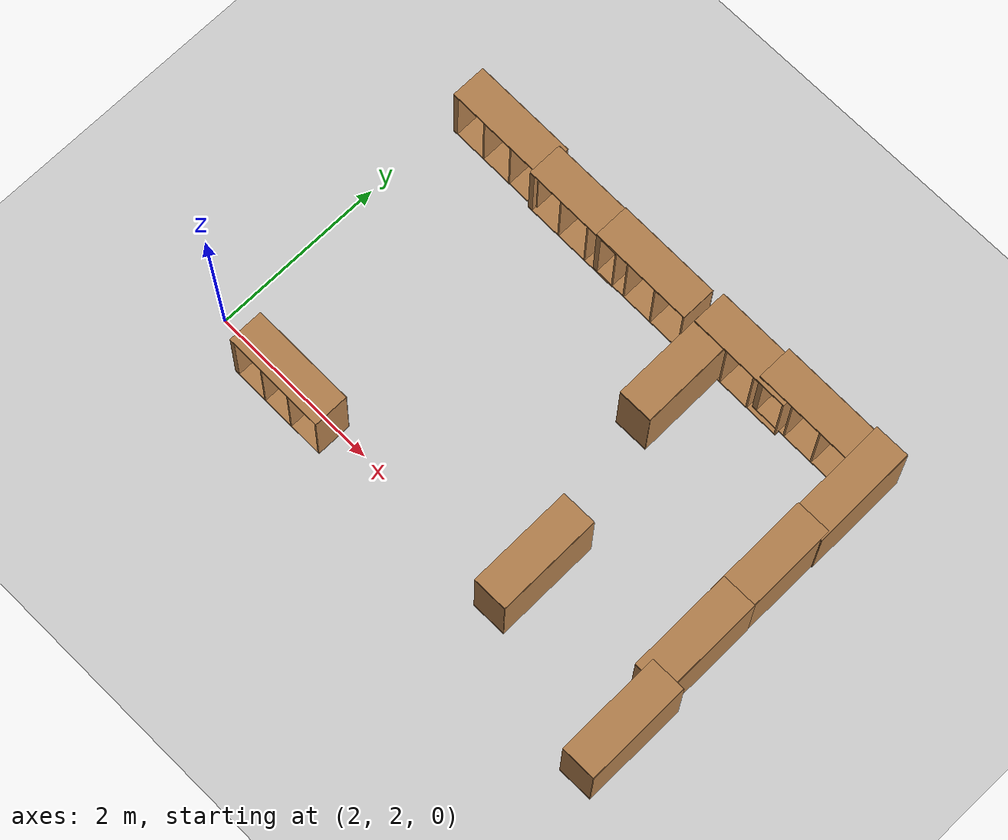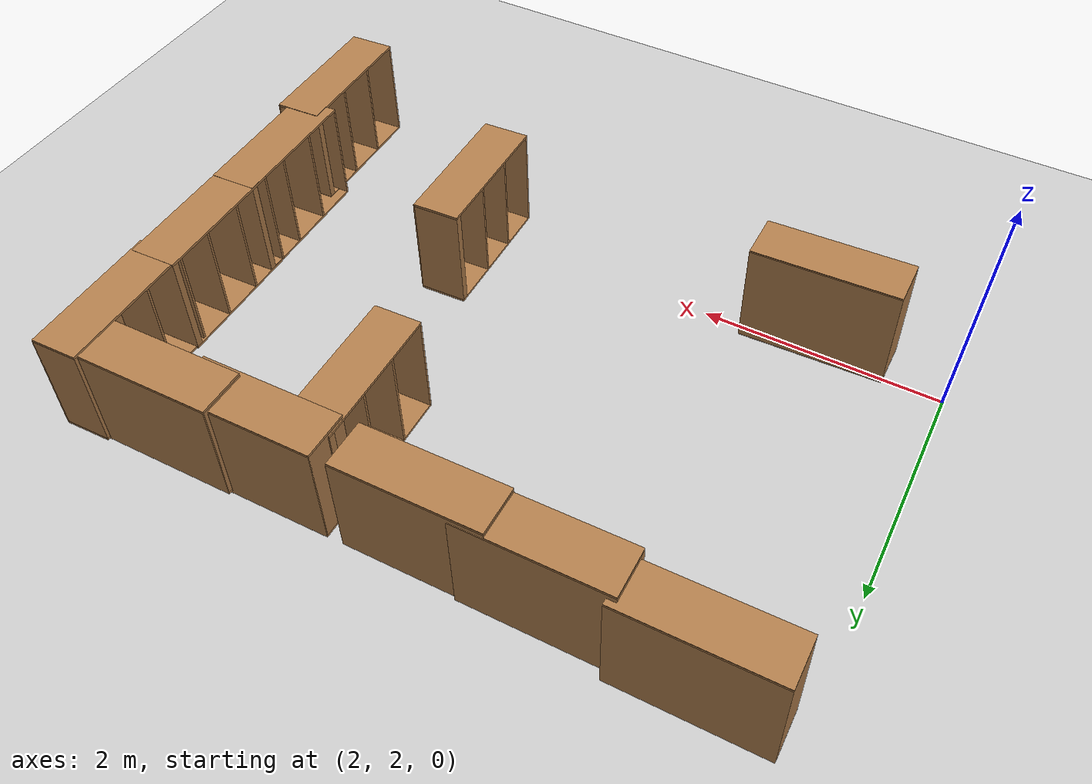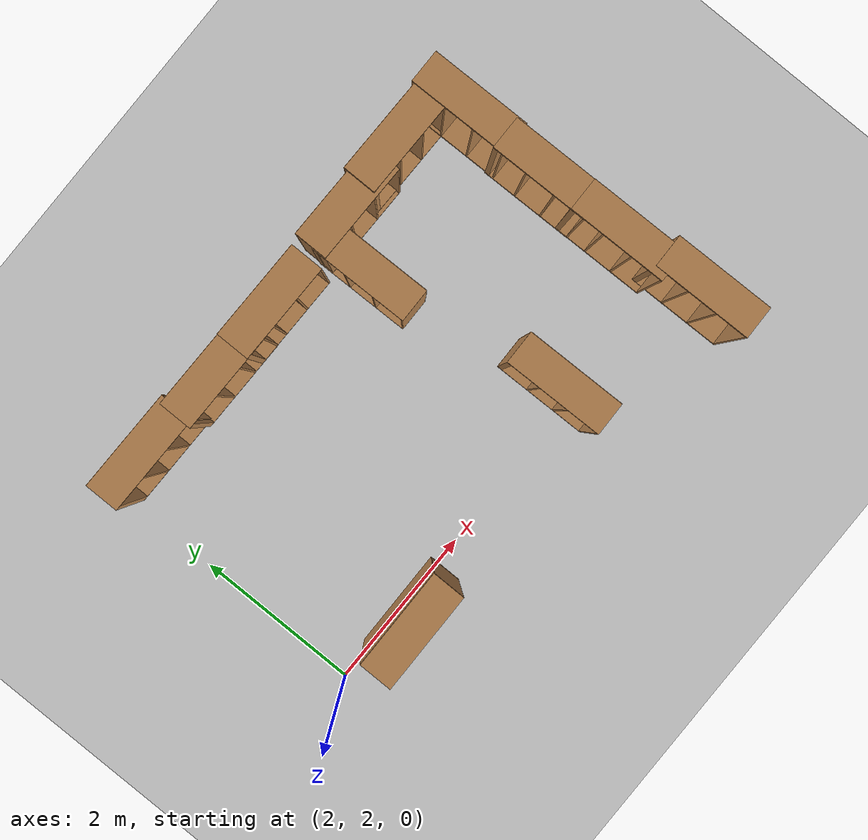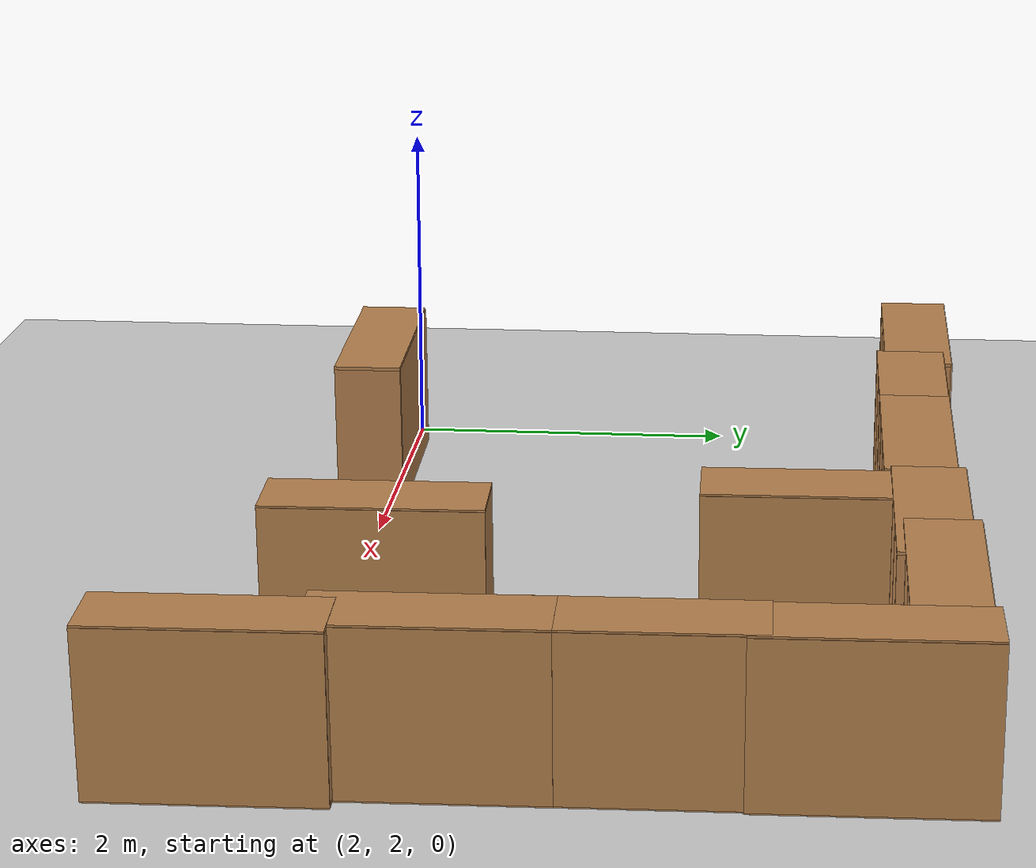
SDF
<sdf version="1.7">
 <world name="default">
  <model name="ground_plane">
   <static>1</static>
   <link name="link">
    <collision name="collision">
     <geometry><plane><normal>0 0 1</normal><size>100 100</size></plane></geometry>
     <surface>
      <contact><collide_bitmask>65535</collide_bitmask></contact>
      <friction><ode><mu>100</mu><mu2>50</mu2></ode></friction>
     </surface>
    </collision>
    <visual name="visual">
     <cast_shadows>0</cast_shadows>
     <geometry><plane><normal>0 0 1</normal><size>100 100</size></plane></geometry>
     <material>
      <script><uri>file://media/materials/scripts/gazebo.material</uri><name>Gazebo/Grey</name></script>
     </material>
    </visual>
   </link>
  </model>
  <model name="bookshelf_clone_clone_clone_5_clone_1">
   <static>1</static>
   <link name="link">
    <inertial><mass>1</mass></inertial>
    <collision name="back">
     <pose>0 0.005 0.6 0 -0 0</pose>
     <geometry><box><size>0.9 0.01 1.2</size></box></geometry>
    </collision>
    <visual name="visual1">
     <pose>0 0.005 0.6 0 -0 0</pose>
     <geometry><box><size>0.9 0.01 1.2</size></box></geometry>
     <material>
      <script><uri>file://media/materials/scripts/gazebo.material</uri><name>Gazebo/Wood</name></script>
     </material>
    </visual>
    <collision name="left_side">
     <pose>0.45 -0.195 0.6 0 -0 0</pose>
     <geometry><box><size>0.02 0.4 1.2</size></box></geometry>
    </collision>
    <visual name="visual2">
     <pose>0.45 -0.195 0.6 0 -0 0</pose>
     <geometry><box><size>0.02 0.4 1.2</size></box></geometry>
     <material>
      <script><uri>file://media/materials/scripts/gazebo.material</uri><name>Gazebo/Wood</name></script>
     </material>
    </visual>
    <collision name="right_side">
     <pose>-0.45 -0.195 0.6 0 -0 0</pose>
     <geometry><box><size>0.02 0.4 1.2</size></box></geometry>
    </collision>
    <visual name="visual3">
     <pose>-0.45 -0.195 0.6 0 -0 0</pose>
     <geometry><box><size>0.02 0.4 1.2</size></box></geometry>
     <material>
      <script><uri>file://media/materials/scripts/gazebo.material</uri><name>Gazebo/Wood</name></script>
     </material>
    </visual>
    <collision name="bottom">
     <pose>0 -0.195 0.03 0 -0 0</pose>
     <geometry><box><size>0.88 0.4 0.06</size></box></geometry>
    </collision>
    <visual name="visual4">
     <pose>0 -0.195 0.03 0 -0 0</pose>
     <geometry><box><size>0.88 0.4 0.06</size></box></geometry>
     <material>
      <script><uri>file://media/materials/scripts/gazebo.material</uri><name>Gazebo/Wood</name></script>
     </material>
    </visual>
    <collision name="top">
     <pose>0 -0.195 1.19 0 -0 0</pose>
     <geometry><box><size>0.88 0.4 0.02</size></box></geometry>
    </collision>
    <visual name="visual5">
     <pose>0 -0.195 1.19 0 -0 0</pose>
     <geometry><box><size>0.88 0.4 0.02</size></box></geometry>
     <material>
      <script><uri>file://media/materials/scripts/gazebo.material</uri><name>Gazebo/Wood</name></script>
     </material>
    </visual>
    <collision name="low_shelf">
     <pose>0 -0.195 0.43 0 -0 0</pose>
     <geometry><box><size>0.88 0.4 0.02</size></box></geometry>
    </collision>
    <visual name="visual6">
     <pose>0 -0.195 0.43 0 -0 0</pose>
     <geometry><box><size>0.88 0.4 0.02</size></box></geometry>
     <material>
      <script><uri>file://media/materials/scripts/gazebo.material</uri><name>Gazebo/Wood</name></script>
     </material>
    </visual>
    <collision name="high_shelf">
     <pose>0 -0.195 0.8 0 -0 0</pose>
     <geometry><box><size>0.88 0.4 0.02</size></box></geometry>
    </collision>
    <visual name="visual7">
     <pose>0 -0.195 0.8 0 -0 0</pose>
     <geometry><box><size>0.88 0.4 0.02</size></box></geometry>
     <material>
      <script><uri>file://media/materials/scripts/gazebo.material</uri><name>Gazebo/Wood</name></script>
     </material>
    </visual>
   </link>
   <pose>5.88732 5.20047 0.482938 -1.58898 1.52729 3.13696</pose>
  </model>
  <model name="bookshelf_clone_clone_clone_5_clone_3_clone">
   <static>1</static>
   <link name="link">
    <inertial><mass>1</mass></inertial>
    <collision name="back">
     <pose>0 0.005 0.6 0 -0 0</pose>
     <geometry><box><size>0.9 0.01 1.2</size></box></geometry>
    </collision>
    <visual name="visual1">
     <pose>0 0.005 0.6 0 -0 0</pose>
     <geometry><box><size>0.9 0.01 1.2</size></box></geometry>
     <material>
      <script><uri>file://media/materials/scripts/gazebo.material</uri><name>Gazebo/Wood</name></script>
     </material>
    </visual>
    <collision name="left_side">
     <pose>0.45 -0.195 0.6 0 -0 0</pose>
     <geometry><box><size>0.02 0.4 1.2</size></box></geometry>
    </collision>
    <visual name="visual2">
     <pose>0.45 -0.195 0.6 0 -0 0</pose>
     <geometry><box><size>0.02 0.4 1.2</size></box></geometry>
     <material>
      <script><uri>file://media/materials/scripts/gazebo.material</uri><name>Gazebo/Wood</name></script>
     </material>
    </visual>
    <collision name="right_side">
     <pose>-0.45 -0.195 0.6 0 -0 0</pose>
     <geometry><box><size>0.02 0.4 1.2</size></box></geometry>
    </collision>
    <visual name="visual3">
     <pose>-0.45 -0.195 0.6 0 -0 0</pose>
     <geometry><box><size>0.02 0.4 1.2</size></box></geometry>
     <material>
      <script><uri>file://media/materials/scripts/gazebo.material</uri><name>Gazebo/Wood</name></script>
     </material>
    </visual>
    <collision name="bottom">
     <pose>0 -0.195 0.03 0 -0 0</pose>
     <geometry><box><size>0.88 0.4 0.06</size></box></geometry>
    </collision>
    <visual name="visual4">
     <pose>0 -0.195 0.03 0 -0 0</pose>
     <geometry><box><size>0.88 0.4 0.06</size></box></geometry>
     <material>
      <script><uri>file://media/materials/scripts/gazebo.material</uri><name>Gazebo/Wood</name></script>
     </material>
    </visual>
    <collision name="top">
     <pose>0 -0.195 1.19 0 -0 0</pose>
     <geometry><box><size>0.88 0.4 0.02</size></box></geometry>
    </collision>
    <visual name="visual5">
     <pose>0 -0.195 1.19 0 -0 0</pose>
     <geometry><box><size>0.88 0.4 0.02</size></box></geometry>
     <material>
      <script><uri>file://media/materials/scripts/gazebo.material</uri><name>Gazebo/Wood</name></script>
     </material>
    </visual>
    <collision name="low_shelf">
     <pose>0 -0.195 0.43 0 -0 0</pose>
     <geometry><box><size>0.88 0.4 0.02</size></box></geometry>
    </collision>
    <visual name="visual6">
     <pose>0 -0.195 0.43 0 -0 0</pose>
     <geometry><box><size>0.88 0.4 0.02</size></box></geometry>
     <material>
      <script><uri>file://media/materials/scripts/gazebo.material</uri><name>Gazebo/Wood</name></script>
     </material>
    </visual>
    <collision name="high_shelf">
     <pose>0 -0.195 0.8 0 -0 0</pose>
     <geometry><box><size>0.88 0.4 0.02</size></box></geometry>
    </collision>
    <visual name="visual7">
     <pose>0 -0.195 0.8 0 -0 0</pose>
     <geometry><box><size>0.88 0.4 0.02</size></box></geometry>
     <material>
      <script><uri>file://media/materials/scripts/gazebo.material</uri><name>Gazebo/Wood</name></script>
     </material>
    </visual>
   </link>
   <pose>7.99287 2.34294 0.482938 -1.58898 1.52729 3.13696</pose>
  </model>
  <model name="bookshelf_clone_clone_clone_5_clone_3_clone_0">
   <static>1</static>
   <link name="link">
    <inertial><mass>1</mass></inertial>
    <collision name="back">
     <pose>0 0.005 0.6 0 -0 0</pose>
     <geometry><box><size>0.9 0.01 1.2</size></box></geometry>
    </collision>
    <visual name="visual1">
     <pose>0 0.005 0.6 0 -0 0</pose>
     <geometry><box><size>0.9 0.01 1.2</size></box></geometry>
     <material>
      <script><uri>file://media/materials/scripts/gazebo.material</uri><name>Gazebo/Wood</name></script>
     </material>
    </visual>
    <collision name="left_side">
     <pose>0.45 -0.195 0.6 0 -0 0</pose>
     <geometry><box><size>0.02 0.4 1.2</size></box></geometry>
    </collision>
    <visual name="visual2">
     <pose>0.45 -0.195 0.6 0 -0 0</pose>
     <geometry><box><size>0.02 0.4 1.2</size></box></geometry>
     <material>
      <script><uri>file://media/materials/scripts/gazebo.material</uri><name>Gazebo/Wood</name></script>
     </material>
    </visual>
    <collision name="right_side">
     <pose>-0.45 -0.195 0.6 0 -0 0</pose>
     <geometry><box><size>0.02 0.4 1.2</size></box></geometry>
    </collision>
    <visual name="visual3">
     <pose>-0.45 -0.195 0.6 0 -0 0</pose>
     <geometry><box><size>0.02 0.4 1.2</size></box></geometry>
     <material>
      <script><uri>file://media/materials/scripts/gazebo.material</uri><name>Gazebo/Wood</name></script>
     </material>
    </visual>
    <collision name="bottom">
     <pose>0 -0.195 0.03 0 -0 0</pose>
     <geometry><box><size>0.88 0.4 0.06</size></box></geometry>
    </collision>
    <visual name="visual4">
     <pose>0 -0.195 0.03 0 -0 0</pose>
     <geometry><box><size>0.88 0.4 0.06</size></box></geometry>
     <material>
      <script><uri>file://media/materials/scripts/gazebo.material</uri><name>Gazebo/Wood</name></script>
     </material>
    </visual>
    <collision name="top">
     <pose>0 -0.195 1.19 0 -0 0</pose>
     <geometry><box><size>0.88 0.4 0.02</size></box></geometry>
    </collision>
    <visual name="visual5">
     <pose>0 -0.195 1.19 0 -0 0</pose>
     <geometry><box><size>0.88 0.4 0.02</size></box></geometry>
     <material>
      <script><uri>file://media/materials/scripts/gazebo.material</uri><name>Gazebo/Wood</name></script>
     </material>
    </visual>
    <collision name="low_shelf">
     <pose>0 -0.195 0.43 0 -0 0</pose>
     <geometry><box><size>0.88 0.4 0.02</size></box></geometry>
    </collision>
    <visual name="visual6">
     <pose>0 -0.195 0.43 0 -0 0</pose>
     <geometry><box><size>0.88 0.4 0.02</size></box></geometry>
     <material>
      <script><uri>file://media/materials/scripts/gazebo.material</uri><name>Gazebo/Wood</name></script>
     </material>
    </visual>
    <collision name="high_shelf">
     <pose>0 -0.195 0.8 0 -0 0</pose>
     <geometry><box><size>0.88 0.4 0.02</size></box></geometry>
    </collision>
    <visual name="visual7">
     <pose>0 -0.195 0.8 0 -0 0</pose>
     <geometry><box><size>0.88 0.4 0.02</size></box></geometry>
     <material>
      <script><uri>file://media/materials/scripts/gazebo.material</uri><name>Gazebo/Wood</name></script>
     </material>
    </visual>
   </link>
   <pose>7.89296 3.39109 0.482938 -1.58898 1.52729 3.13696</pose>
  </model>
  <model name="bookshelf_clone_clone_clone_5_clone_3_clone_1">
   <static>1</static>
   <link name="link">
    <inertial><mass>1</mass></inertial>
    <collision name="back">
     <pose>0 0.005 0.6 0 -0 0</pose>
     <geometry><box><size>0.9 0.01 1.2</size></box></geometry>
    </collision>
    <visual name="visual1">
     <pose>0 0.005 0.6 0 -0 0</pose>
     <geometry><box><size>0.9 0.01 1.2</size></box></geometry>
     <material>
      <script><uri>file://media/materials/scripts/gazebo.material</uri><name>Gazebo/Wood</name></script>
     </material>
    </visual>
    <collision name="left_side">
     <pose>0.45 -0.195 0.6 0 -0 0</pose>
     <geometry><box><size>0.02 0.4 1.2</size></box></geometry>
    </collision>
    <visual name="visual2">
     <pose>0.45 -0.195 0.6 0 -0 0</pose>
     <geometry><box><size>0.02 0.4 1.2</size></box></geometry>
     <material>
      <script><uri>file://media/materials/scripts/gazebo.material</uri><name>Gazebo/Wood</name></script>
     </material>
    </visual>
    <collision name="right_side">
     <pose>-0.45 -0.195 0.6 0 -0 0</pose>
     <geometry><box><size>0.02 0.4 1.2</size></box></geometry>
    </collision>
    <visual name="visual3">
     <pose>-0.45 -0.195 0.6 0 -0 0</pose>
     <geometry><box><size>0.02 0.4 1.2</size></box></geometry>
     <material>
      <script><uri>file://media/materials/scripts/gazebo.material</uri><name>Gazebo/Wood</name></script>
     </material>
    </visual>
    <collision name="bottom">
     <pose>0 -0.195 0.03 0 -0 0</pose>
     <geometry><box><size>0.88 0.4 0.06</size></box></geometry>
    </collision>
    <visual name="visual4">
     <pose>0 -0.195 0.03 0 -0 0</pose>
     <geometry><box><size>0.88 0.4 0.06</size></box></geometry>
     <material>
      <script><uri>file://media/materials/scripts/gazebo.material</uri><name>Gazebo/Wood</name></script>
     </material>
    </visual>
    <collision name="top">
     <pose>0 -0.195 1.19 0 -0 0</pose>
     <geometry><box><size>0.88 0.4 0.02</size></box></geometry>
    </collision>
    <visual name="visual5">
     <pose>0 -0.195 1.19 0 -0 0</pose>
     <geometry><box><size>0.88 0.4 0.02</size></box></geometry>
     <material>
      <script><uri>file://media/materials/scripts/gazebo.material</uri><name>Gazebo/Wood</name></script>
     </material>
    </visual>
    <collision name="low_shelf">
     <pose>0 -0.195 0.43 0 -0 0</pose>
     <geometry><box><size>0.88 0.4 0.02</size></box></geometry>
    </collision>
    <visual name="visual6">
     <pose>0 -0.195 0.43 0 -0 0</pose>
     <geometry><box><size>0.88 0.4 0.02</size></box></geometry>
     <material>
      <script><uri>file://media/materials/scripts/gazebo.material</uri><name>Gazebo/Wood</name></script>
     </material>
    </visual>
    <collision name="high_shelf">
     <pose>0 -0.195 0.8 0 -0 0</pose>
     <geometry><box><size>0.88 0.4 0.02</size></box></geometry>
    </collision>
    <visual name="visual7">
     <pose>0 -0.195 0.8 0 -0 0</pose>
     <geometry><box><size>0.88 0.4 0.02</size></box></geometry>
     <material>
      <script><uri>file://media/materials/scripts/gazebo.material</uri><name>Gazebo/Wood</name></script>
     </material>
    </visual>
   </link>
   <pose>7.87619 4.4114 0.482938 -1.58898 1.52729 3.13696</pose>
  </model>
  <model name="bookshelf_clone_clone_clone_5_clone_3_clone_2">
   <static>1</static>
   <link name="link">
    <inertial><mass>1</mass></inertial>
    <collision name="back">
     <pose>0 0.005 0.6 0 -0 0</pose>
     <geometry><box><size>0.9 0.01 1.2</size></box></geometry>
    </collision>
    <visual name="visual1">
     <pose>0 0.005 0.6 0 -0 0</pose>
     <geometry><box><size>0.9 0.01 1.2</size></box></geometry>
     <material>
      <script><uri>file://media/materials/scripts/gazebo.material</uri><name>Gazebo/Wood</name></script>
     </material>
    </visual>
    <collision name="left_side">
     <pose>0.45 -0.195 0.6 0 -0 0</pose>
     <geometry><box><size>0.02 0.4 1.2</size></box></geometry>
    </collision>
    <visual name="visual2">
     <pose>0.45 -0.195 0.6 0 -0 0</pose>
     <geometry><box><size>0.02 0.4 1.2</size></box></geometry>
     <material>
      <script><uri>file://media/materials/scripts/gazebo.material</uri><name>Gazebo/Wood</name></script>
     </material>
    </visual>
    <collision name="right_side">
     <pose>-0.45 -0.195 0.6 0 -0 0</pose>
     <geometry><box><size>0.02 0.4 1.2</size></box></geometry>
    </collision>
    <visual name="visual3">
     <pose>-0.45 -0.195 0.6 0 -0 0</pose>
     <geometry><box><size>0.02 0.4 1.2</size></box></geometry>
     <material>
      <script><uri>file://media/materials/scripts/gazebo.material</uri><name>Gazebo/Wood</name></script>
     </material>
    </visual>
    <collision name="bottom">
     <pose>0 -0.195 0.03 0 -0 0</pose>
     <geometry><box><size>0.88 0.4 0.06</size></box></geometry>
    </collision>
    <visual name="visual4">
     <pose>0 -0.195 0.03 0 -0 0</pose>
     <geometry><box><size>0.88 0.4 0.06</size></box></geometry>
     <material>
      <script><uri>file://media/materials/scripts/gazebo.material</uri><name>Gazebo/Wood</name></script>
     </material>
    </visual>
    <collision name="top">
     <pose>0 -0.195 1.19 0 -0 0</pose>
     <geometry><box><size>0.88 0.4 0.02</size></box></geometry>
    </collision>
    <visual name="visual5">
     <pose>0 -0.195 1.19 0 -0 0</pose>
     <geometry><box><size>0.88 0.4 0.02</size></box></geometry>
     <material>
      <script><uri>file://media/materials/scripts/gazebo.material</uri><name>Gazebo/Wood</name></script>
     </material>
    </visual>
    <collision name="low_shelf">
     <pose>0 -0.195 0.43 0 -0 0</pose>
     <geometry><box><size>0.88 0.4 0.02</size></box></geometry>
    </collision>
    <visual name="visual6">
     <pose>0 -0.195 0.43 0 -0 0</pose>
     <geometry><box><size>0.88 0.4 0.02</size></box></geometry>
     <material>
      <script><uri>file://media/materials/scripts/gazebo.material</uri><name>Gazebo/Wood</name></script>
     </material>
    </visual>
    <collision name="high_shelf">
     <pose>0 -0.195 0.8 0 -0 0</pose>
     <geometry><box><size>0.88 0.4 0.02</size></box></geometry>
    </collision>
    <visual name="visual7">
     <pose>0 -0.195 0.8 0 -0 0</pose>
     <geometry><box><size>0.88 0.4 0.02</size></box></geometry>
     <material>
      <script><uri>file://media/materials/scripts/gazebo.material</uri><name>Gazebo/Wood</name></script>
     </material>
    </visual>
   </link>
   <pose>7.87494 5.49145 0.482938 -1.58898 1.52729 3.13696</pose>
  </model>
  <model name="bookshelf_clone_clone_clone_4_clone_1">
   <static>1</static>
   <link name="link">
    <inertial><mass>1</mass></inertial>
    <collision name="back">
     <pose>0 0.005 0.6 0 -0 0</pose>
     <geometry><box><size>0.9 0.01 1.2</size></box></geometry>
    </collision>
    <visual name="visual1">
     <pose>0 0.005 0.6 0 -0 0</pose>
     <geometry><box><size>0.9 0.01 1.2</size></box></geometry>
     <material>
      <script><uri>file://media/materials/scripts/gazebo.material</uri><name>Gazebo/Wood</name></script>
     </material>
    </visual>
    <collision name="left_side">
     <pose>0.45 -0.195 0.6 0 -0 0</pose>
     <geometry><box><size>0.02 0.4 1.2</size></box></geometry>
    </collision>
    <visual name="visual2">
     <pose>0.45 -0.195 0.6 0 -0 0</pose>
     <geometry><box><size>0.02 0.4 1.2</size></box></geometry>
     <material>
      <script><uri>file://media/materials/scripts/gazebo.material</uri><name>Gazebo/Wood</name></script>
     </material>
    </visual>
    <collision name="right_side">
     <pose>-0.45 -0.195 0.6 0 -0 0</pose>
     <geometry><box><size>0.02 0.4 1.2</size></box></geometry>
    </collision>
    <visual name="visual3">
     <pose>-0.45 -0.195 0.6 0 -0 0</pose>
     <geometry><box><size>0.02 0.4 1.2</size></box></geometry>
     <material>
      <script><uri>file://media/materials/scripts/gazebo.material</uri><name>Gazebo/Wood</name></script>
     </material>
    </visual>
    <collision name="bottom">
     <pose>0 -0.195 0.03 0 -0 0</pose>
     <geometry><box><size>0.88 0.4 0.06</size></box></geometry>
    </collision>
    <visual name="visual4">
     <pose>0 -0.195 0.03 0 -0 0</pose>
     <geometry><box><size>0.88 0.4 0.06</size></box></geometry>
     <material>
      <script><uri>file://media/materials/scripts/gazebo.material</uri><name>Gazebo/Wood</name></script>
     </material>
    </visual>
    <collision name="top">
     <pose>0 -0.195 1.19 0 -0 0</pose>
     <geometry><box><size>0.88 0.4 0.02</size></box></geometry>
    </collision>
    <visual name="visual5">
     <pose>0 -0.195 1.19 0 -0 0</pose>
     <geometry><box><size>0.88 0.4 0.02</size></box></geometry>
     <material>
      <script><uri>file://media/materials/scripts/gazebo.material</uri><name>Gazebo/Wood</name></script>
     </material>
    </visual>
    <collision name="low_shelf">
     <pose>0 -0.195 0.43 0 -0 0</pose>
     <geometry><box><size>0.88 0.4 0.02</size></box></geometry>
    </collision>
    <visual name="visual6">
     <pose>0 -0.195 0.43 0 -0 0</pose>
     <geometry><box><size>0.88 0.4 0.02</size></box></geometry>
     <material>
      <script><uri>file://media/materials/scripts/gazebo.material</uri><name>Gazebo/Wood</name></script>
     </material>
    </visual>
    <collision name="high_shelf">
     <pose>0 -0.195 0.8 0 -0 0</pose>
     <geometry><box><size>0.88 0.4 0.02</size></box></geometry>
    </collision>
    <visual name="visual7">
     <pose>0 -0.195 0.8 0 -0 0</pose>
     <geometry><box><size>0.88 0.4 0.02</size></box></geometry>
     <material>
      <script><uri>file://media/materials/scripts/gazebo.material</uri><name>Gazebo/Wood</name></script>
     </material>
    </visual>
   </link>
   <pose>6.34371 5.44821 0.531222 3.1373 1.52729 3.13696</pose>
  </model>
  <model name="bookshelf_clone_clone_clone_4_clone_2">
   <static>1</static>
   <link name="link">
    <inertial><mass>1</mass></inertial>
    <collision name="back">
     <pose>0 0.005 0.6 0 -0 0</pose>
     <geometry><box><size>0.9 0.01 1.2</size></box></geometry>
    </collision>
    <visual name="visual1">
     <pose>0 0.005 0.6 0 -0 0</pose>
     <geometry><box><size>0.9 0.01 1.2</size></box></geometry>
     <material>
      <script><uri>file://media/materials/scripts/gazebo.material</uri><name>Gazebo/Wood</name></script>
     </material>
    </visual>
    <collision name="left_side">
     <pose>0.45 -0.195 0.6 0 -0 0</pose>
     <geometry><box><size>0.02 0.4 1.2</size></box></geometry>
    </collision>
    <visual name="visual2">
     <pose>0.45 -0.195 0.6 0 -0 0</pose>
     <geometry><box><size>0.02 0.4 1.2</size></box></geometry>
     <material>
      <script><uri>file://media/materials/scripts/gazebo.material</uri><name>Gazebo/Wood</name></script>
     </material>
    </visual>
    <collision name="right_side">
     <pose>-0.45 -0.195 0.6 0 -0 0</pose>
     <geometry><box><size>0.02 0.4 1.2</size></box></geometry>
    </collision>
    <visual name="visual3">
     <pose>-0.45 -0.195 0.6 0 -0 0</pose>
     <geometry><box><size>0.02 0.4 1.2</size></box></geometry>
     <material>
      <script><uri>file://media/materials/scripts/gazebo.material</uri><name>Gazebo/Wood</name></script>
     </material>
    </visual>
    <collision name="bottom">
     <pose>0 -0.195 0.03 0 -0 0</pose>
     <geometry><box><size>0.88 0.4 0.06</size></box></geometry>
    </collision>
    <visual name="visual4">
     <pose>0 -0.195 0.03 0 -0 0</pose>
     <geometry><box><size>0.88 0.4 0.06</size></box></geometry>
     <material>
      <script><uri>file://media/materials/scripts/gazebo.material</uri><name>Gazebo/Wood</name></script>
     </material>
    </visual>
    <collision name="top">
     <pose>0 -0.195 1.19 0 -0 0</pose>
     <geometry><box><size>0.88 0.4 0.02</size></box></geometry>
    </collision>
    <visual name="visual5">
     <pose>0 -0.195 1.19 0 -0 0</pose>
     <geometry><box><size>0.88 0.4 0.02</size></box></geometry>
     <material>
      <script><uri>file://media/materials/scripts/gazebo.material</uri><name>Gazebo/Wood</name></script>
     </material>
    </visual>
    <collision name="low_shelf">
     <pose>0 -0.195 0.43 0 -0 0</pose>
     <geometry><box><size>0.88 0.4 0.02</size></box></geometry>
    </collision>
    <visual name="visual6">
     <pose>0 -0.195 0.43 0 -0 0</pose>
     <geometry><box><size>0.88 0.4 0.02</size></box></geometry>
     <material>
      <script><uri>file://media/materials/scripts/gazebo.material</uri><name>Gazebo/Wood</name></script>
     </material>
    </visual>
    <collision name="high_shelf">
     <pose>0 -0.195 0.8 0 -0 0</pose>
     <geometry><box><size>0.88 0.4 0.02</size></box></geometry>
    </collision>
    <visual name="visual7">
     <pose>0 -0.195 0.8 0 -0 0</pose>
     <geometry><box><size>0.88 0.4 0.02</size></box></geometry>
     <material>
      <script><uri>file://media/materials/scripts/gazebo.material</uri><name>Gazebo/Wood</name></script>
     </material>
    </visual>
   </link>
   <pose>5.50381 5.4079 0.531222 3.1373 1.52729 3.13696</pose>
  </model>
  <model name="bookshelf_clone_clone_clone_4_clone_3">
   <static>1</static>
   <link name="link">
    <inertial><mass>1</mass></inertial>
    <collision name="back">
     <pose>0 0.005 0.6 0 -0 0</pose>
     <geometry><box><size>0.9 0.01 1.2</size></box></geometry>
    </collision>
    <visual name="visual1">
     <pose>0 0.005 0.6 0 -0 0</pose>
     <geometry><box><size>0.9 0.01 1.2</size></box></geometry>
     <material>
      <script><uri>file://media/materials/scripts/gazebo.material</uri><name>Gazebo/Wood</name></script>
     </material>
    </visual>
    <collision name="left_side">
     <pose>0.45 -0.195 0.6 0 -0 0</pose>
     <geometry><box><size>0.02 0.4 1.2</size></box></geometry>
    </collision>
    <visual name="visual2">
     <pose>0.45 -0.195 0.6 0 -0 0</pose>
     <geometry><box><size>0.02 0.4 1.2</size></box></geometry>
     <material>
      <script><uri>file://media/materials/scripts/gazebo.material</uri><name>Gazebo/Wood</name></script>
     </material>
    </visual>
    <collision name="right_side">
     <pose>-0.45 -0.195 0.6 0 -0 0</pose>
     <geometry><box><size>0.02 0.4 1.2</size></box></geometry>
    </collision>
    <visual name="visual3">
     <pose>-0.45 -0.195 0.6 0 -0 0</pose>
     <geometry><box><size>0.02 0.4 1.2</size></box></geometry>
     <material>
      <script><uri>file://media/materials/scripts/gazebo.material</uri><name>Gazebo/Wood</name></script>
     </material>
    </visual>
    <collision name="bottom">
     <pose>0 -0.195 0.03 0 -0 0</pose>
     <geometry><box><size>0.88 0.4 0.06</size></box></geometry>
    </collision>
    <visual name="visual4">
     <pose>0 -0.195 0.03 0 -0 0</pose>
     <geometry><box><size>0.88 0.4 0.06</size></box></geometry>
     <material>
      <script><uri>file://media/materials/scripts/gazebo.material</uri><name>Gazebo/Wood</name></script>
     </material>
    </visual>
    <collision name="top">
     <pose>0 -0.195 1.19 0 -0 0</pose>
     <geometry><box><size>0.88 0.4 0.02</size></box></geometry>
    </collision>
    <visual name="visual5">
     <pose>0 -0.195 1.19 0 -0 0</pose>
     <geometry><box><size>0.88 0.4 0.02</size></box></geometry>
     <material>
      <script><uri>file://media/materials/scripts/gazebo.material</uri><name>Gazebo/Wood</name></script>
     </material>
    </visual>
    <collision name="low_shelf">
     <pose>0 -0.195 0.43 0 -0 0</pose>
     <geometry><box><size>0.88 0.4 0.02</size></box></geometry>
    </collision>
    <visual name="visual6">
     <pose>0 -0.195 0.43 0 -0 0</pose>
     <geometry><box><size>0.88 0.4 0.02</size></box></geometry>
     <material>
      <script><uri>file://media/materials/scripts/gazebo.material</uri><name>Gazebo/Wood</name></script>
     </material>
    </visual>
    <collision name="high_shelf">
     <pose>0 -0.195 0.8 0 -0 0</pose>
     <geometry><box><size>0.88 0.4 0.02</size></box></geometry>
    </collision>
    <visual name="visual7">
     <pose>0 -0.195 0.8 0 -0 0</pose>
     <geometry><box><size>0.88 0.4 0.02</size></box></geometry>
     <material>
      <script><uri>file://media/materials/scripts/gazebo.material</uri><name>Gazebo/Wood</name></script>
     </material>
    </visual>
   </link>
   <pose>4.19933 5.37529 0.531222 3.1373 1.52729 3.13696</pose>
  </model>
  <model name="bookshelf_clone_clone_clone_4_clone_4">
   <static>1</static>
   <link name="link">
    <inertial><mass>1</mass></inertial>
    <collision name="back">
     <pose>0 0.005 0.6 0 -0 0</pose>
     <geometry><box><size>0.9 0.01 1.2</size></box></geometry>
    </collision>
    <visual name="visual1">
     <pose>0 0.005 0.6 0 -0 0</pose>
     <geometry><box><size>0.9 0.01 1.2</size></box></geometry>
     <material>
      <script><uri>file://media/materials/scripts/gazebo.material</uri><name>Gazebo/Wood</name></script>
     </material>
    </visual>
    <collision name="left_side">
     <pose>0.45 -0.195 0.6 0 -0 0</pose>
     <geometry><box><size>0.02 0.4 1.2</size></box></geometry>
    </collision>
    <visual name="visual2">
     <pose>0.45 -0.195 0.6 0 -0 0</pose>
     <geometry><box><size>0.02 0.4 1.2</size></box></geometry>
     <material>
      <script><uri>file://media/materials/scripts/gazebo.material</uri><name>Gazebo/Wood</name></script>
     </material>
    </visual>
    <collision name="right_side">
     <pose>-0.45 -0.195 0.6 0 -0 0</pose>
     <geometry><box><size>0.02 0.4 1.2</size></box></geometry>
    </collision>
    <visual name="visual3">
     <pose>-0.45 -0.195 0.6 0 -0 0</pose>
     <geometry><box><size>0.02 0.4 1.2</size></box></geometry>
     <material>
      <script><uri>file://media/materials/scripts/gazebo.material</uri><name>Gazebo/Wood</name></script>
     </material>
    </visual>
    <collision name="bottom">
     <pose>0 -0.195 0.03 0 -0 0</pose>
     <geometry><box><size>0.88 0.4 0.06</size></box></geometry>
    </collision>
    <visual name="visual4">
     <pose>0 -0.195 0.03 0 -0 0</pose>
     <geometry><box><size>0.88 0.4 0.06</size></box></geometry>
     <material>
      <script><uri>file://media/materials/scripts/gazebo.material</uri><name>Gazebo/Wood</name></script>
     </material>
    </visual>
    <collision name="top">
     <pose>0 -0.195 1.19 0 -0 0</pose>
     <geometry><box><size>0.88 0.4 0.02</size></box></geometry>
    </collision>
    <visual name="visual5">
     <pose>0 -0.195 1.19 0 -0 0</pose>
     <geometry><box><size>0.88 0.4 0.02</size></box></geometry>
     <material>
      <script><uri>file://media/materials/scripts/gazebo.material</uri><name>Gazebo/Wood</name></script>
     </material>
    </visual>
    <collision name="low_shelf">
     <pose>0 -0.195 0.43 0 -0 0</pose>
     <geometry><box><size>0.88 0.4 0.02</size></box></geometry>
    </collision>
    <visual name="visual6">
     <pose>0 -0.195 0.43 0 -0 0</pose>
     <geometry><box><size>0.88 0.4 0.02</size></box></geometry>
     <material>
      <script><uri>file://media/materials/scripts/gazebo.material</uri><name>Gazebo/Wood</name></script>
     </material>
    </visual>
    <collision name="high_shelf">
     <pose>0 -0.195 0.8 0 -0 0</pose>
     <geometry><box><size>0.88 0.4 0.02</size></box></geometry>
    </collision>
    <visual name="visual7">
     <pose>0 -0.195 0.8 0 -0 0</pose>
     <geometry><box><size>0.88 0.4 0.02</size></box></geometry>
     <material>
      <script><uri>file://media/materials/scripts/gazebo.material</uri><name>Gazebo/Wood</name></script>
     </material>
    </visual>
   </link>
   <pose>3.27478 5.37904 0.531222 3.1373 1.52729 3.13696</pose>
  </model>
  <model name="bookshelf_clone_clone_clone_4_clone_5">
   <static>1</static>
   <link name="link">
    <inertial><mass>1</mass></inertial>
    <collision name="back">
     <pose>0 0.005 0.6 0 -0 0</pose>
     <geometry><box><size>0.9 0.01 1.2</size></box></geometry>
    </collision>
    <visual name="visual1">
     <pose>0 0.005 0.6 0 -0 0</pose>
     <geometry><box><size>0.9 0.01 1.2</size></box></geometry>
     <material>
      <script><uri>file://media/materials/scripts/gazebo.material</uri><name>Gazebo/Wood</name></script>
     </material>
    </visual>
    <collision name="left_side">
     <pose>0.45 -0.195 0.6 0 -0 0</pose>
     <geometry><box><size>0.02 0.4 1.2</size></box></geometry>
    </collision>
    <visual name="visual2">
     <pose>0.45 -0.195 0.6 0 -0 0</pose>
     <geometry><box><size>0.02 0.4 1.2</size></box></geometry>
     <material>
      <script><uri>file://media/materials/scripts/gazebo.material</uri><name>Gazebo/Wood</name></script>
     </material>
    </visual>
    <collision name="right_side">
     <pose>-0.45 -0.195 0.6 0 -0 0</pose>
     <geometry><box><size>0.02 0.4 1.2</size></box></geometry>
    </collision>
    <visual name="visual3">
     <pose>-0.45 -0.195 0.6 0 -0 0</pose>
     <geometry><box><size>0.02 0.4 1.2</size></box></geometry>
     <material>
      <script><uri>file://media/materials/scripts/gazebo.material</uri><name>Gazebo/Wood</name></script>
     </material>
    </visual>
    <collision name="bottom">
     <pose>0 -0.195 0.03 0 -0 0</pose>
     <geometry><box><size>0.88 0.4 0.06</size></box></geometry>
    </collision>
    <visual name="visual4">
     <pose>0 -0.195 0.03 0 -0 0</pose>
     <geometry><box><size>0.88 0.4 0.06</size></box></geometry>
     <material>
      <script><uri>file://media/materials/scripts/gazebo.material</uri><name>Gazebo/Wood</name></script>
     </material>
    </visual>
    <collision name="top">
     <pose>0 -0.195 1.19 0 -0 0</pose>
     <geometry><box><size>0.88 0.4 0.02</size></box></geometry>
    </collision>
    <visual name="visual5">
     <pose>0 -0.195 1.19 0 -0 0</pose>
     <geometry><box><size>0.88 0.4 0.02</size></box></geometry>
     <material>
      <script><uri>file://media/materials/scripts/gazebo.material</uri><name>Gazebo/Wood</name></script>
     </material>
    </visual>
    <collision name="low_shelf">
     <pose>0 -0.195 0.43 0 -0 0</pose>
     <geometry><box><size>0.88 0.4 0.02</size></box></geometry>
    </collision>
    <visual name="visual6">
     <pose>0 -0.195 0.43 0 -0 0</pose>
     <geometry><box><size>0.88 0.4 0.02</size></box></geometry>
     <material>
      <script><uri>file://media/materials/scripts/gazebo.material</uri><name>Gazebo/Wood</name></script>
     </material>
    </visual>
    <collision name="high_shelf">
     <pose>0 -0.195 0.8 0 -0 0</pose>
     <geometry><box><size>0.88 0.4 0.02</size></box></geometry>
    </collision>
    <visual name="visual7">
     <pose>0 -0.195 0.8 0 -0 0</pose>
     <geometry><box><size>0.88 0.4 0.02</size></box></geometry>
     <material>
      <script><uri>file://media/materials/scripts/gazebo.material</uri><name>Gazebo/Wood</name></script>
     </material>
    </visual>
   </link>
   <pose>2.14716 5.43188 0.531222 3.1373 1.52729 3.13696</pose>
  </model>
  <model name="bookshelf_clone_clone_clone_5_clone_0_clone">
   <static>1</static>
   <link name="link">
    <inertial><mass>1</mass></inertial>
    <collision name="back">
     <pose>0 0.005 0.6 0 -0 0</pose>
     <geometry><box><size>0.9 0.01 1.2</size></box></geometry>
    </collision>
    <visual name="visual1">
     <pose>0 0.005 0.6 0 -0 0</pose>
     <geometry><box><size>0.9 0.01 1.2</size></box></geometry>
     <material>
      <script><uri>file://media/materials/scripts/gazebo.material</uri><name>Gazebo/Wood</name></script>
     </material>
    </visual>
    <collision name="left_side">
     <pose>0.45 -0.195 0.6 0 -0 0</pose>
     <geometry><box><size>0.02 0.4 1.2</size></box></geometry>
    </collision>
    <visual name="visual2">
     <pose>0.45 -0.195 0.6 0 -0 0</pose>
     <geometry><box><size>0.02 0.4 1.2</size></box></geometry>
     <material>
      <script><uri>file://media/materials/scripts/gazebo.material</uri><name>Gazebo/Wood</name></script>
     </material>
    </visual>
    <collision name="right_side">
     <pose>-0.45 -0.195 0.6 0 -0 0</pose>
     <geometry><box><size>0.02 0.4 1.2</size></box></geometry>
    </collision>
    <visual name="visual3">
     <pose>-0.45 -0.195 0.6 0 -0 0</pose>
     <geometry><box><size>0.02 0.4 1.2</size></box></geometry>
     <material>
      <script><uri>file://media/materials/scripts/gazebo.material</uri><name>Gazebo/Wood</name></script>
     </material>
    </visual>
    <collision name="bottom">
     <pose>0 -0.195 0.03 0 -0 0</pose>
     <geometry><box><size>0.88 0.4 0.06</size></box></geometry>
    </collision>
    <visual name="visual4">
     <pose>0 -0.195 0.03 0 -0 0</pose>
     <geometry><box><size>0.88 0.4 0.06</size></box></geometry>
     <material>
      <script><uri>file://media/materials/scripts/gazebo.material</uri><name>Gazebo/Wood</name></script>
     </material>
    </visual>
    <collision name="top">
     <pose>0 -0.195 1.19 0 -0 0</pose>
     <geometry><box><size>0.88 0.4 0.02</size></box></geometry>
    </collision>
    <visual name="visual5">
     <pose>0 -0.195 1.19 0 -0 0</pose>
     <geometry><box><size>0.88 0.4 0.02</size></box></geometry>
     <material>
      <script><uri>file://media/materials/scripts/gazebo.material</uri><name>Gazebo/Wood</name></script>
     </material>
    </visual>
    <collision name="low_shelf">
     <pose>0 -0.195 0.43 0 -0 0</pose>
     <geometry><box><size>0.88 0.4 0.02</size></box></geometry>
    </collision>
    <visual name="visual6">
     <pose>0 -0.195 0.43 0 -0 0</pose>
     <geometry><box><size>0.88 0.4 0.02</size></box></geometry>
     <material>
      <script><uri>file://media/materials/scripts/gazebo.material</uri><name>Gazebo/Wood</name></script>
     </material>
    </visual>
    <collision name="high_shelf">
     <pose>0 -0.195 0.8 0 -0 0</pose>
     <geometry><box><size>0.88 0.4 0.02</size></box></geometry>
    </collision>
    <visual name="visual7">
     <pose>0 -0.195 0.8 0 -0 0</pose>
     <geometry><box><size>0.88 0.4 0.02</size></box></geometry>
     <material>
      <script><uri>file://media/materials/scripts/gazebo.material</uri><name>Gazebo/Wood</name></script>
     </material>
    </visual>
   </link>
   <pose>6.25501 2.90035 0.482938 -1.58898 1.52729 3.13696</pose>
  </model>
  <model name="bookshelf_clone_clone_clone_4_clone_5_clone_8">
   <static>1</static>
   <link name="link">
    <inertial><mass>1</mass></inertial>
    <collision name="back">
     <pose>0 0.005 0.6 0 -0 0</pose>
     <geometry><box><size>0.9 0.01 1.2</size></box></geometry>
    </collision>
    <visual name="visual1">
     <pose>0 0.005 0.6 0 -0 0</pose>
     <geometry><box><size>0.9 0.01 1.2</size></box></geometry>
     <material>
      <script><uri>file://media/materials/scripts/gazebo.material</uri><name>Gazebo/Wood</name></script>
     </material>
    </visual>
    <collision name="left_side">
     <pose>0.45 -0.195 0.6 0 -0 0</pose>
     <geometry><box><size>0.02 0.4 1.2</size></box></geometry>
    </collision>
    <visual name="visual2">
     <pose>0.45 -0.195 0.6 0 -0 0</pose>
     <geometry><box><size>0.02 0.4 1.2</size></box></geometry>
     <material>
      <script><uri>file://media/materials/scripts/gazebo.material</uri><name>Gazebo/Wood</name></script>
     </material>
    </visual>
    <collision name="right_side">
     <pose>-0.45 -0.195 0.6 0 -0 0</pose>
     <geometry><box><size>0.02 0.4 1.2</size></box></geometry>
    </collision>
    <visual name="visual3">
     <pose>-0.45 -0.195 0.6 0 -0 0</pose>
     <geometry><box><size>0.02 0.4 1.2</size></box></geometry>
     <material>
      <script><uri>file://media/materials/scripts/gazebo.material</uri><name>Gazebo/Wood</name></script>
     </material>
    </visual>
    <collision name="bottom">
     <pose>0 -0.195 0.03 0 -0 0</pose>
     <geometry><box><size>0.88 0.4 0.06</size></box></geometry>
    </collision>
    <visual name="visual4">
     <pose>0 -0.195 0.03 0 -0 0</pose>
     <geometry><box><size>0.88 0.4 0.06</size></box></geometry>
     <material>
      <script><uri>file://media/materials/scripts/gazebo.material</uri><name>Gazebo/Wood</name></script>
     </material>
    </visual>
    <collision name="top">
     <pose>0 -0.195 1.19 0 -0 0</pose>
     <geometry><box><size>0.88 0.4 0.02</size></box></geometry>
    </collision>
    <visual name="visual5">
     <pose>0 -0.195 1.19 0 -0 0</pose>
     <geometry><box><size>0.88 0.4 0.02</size></box></geometry>
     <material>
      <script><uri>file://media/materials/scripts/gazebo.material</uri><name>Gazebo/Wood</name></script>
     </material>
    </visual>
    <collision name="low_shelf">
     <pose>0 -0.195 0.43 0 -0 0</pose>
     <geometry><box><size>0.88 0.4 0.02</size></box></geometry>
    </collision>
    <visual name="visual6">
     <pose>0 -0.195 0.43 0 -0 0</pose>
     <geometry><box><size>0.88 0.4 0.02</size></box></geometry>
     <material>
      <script><uri>file://media/materials/scripts/gazebo.material</uri><name>Gazebo/Wood</name></script>
     </material>
    </visual>
    <collision name="high_shelf">
     <pose>0 -0.195 0.8 0 -0 0</pose>
     <geometry><box><size>0.88 0.4 0.02</size></box></geometry>
    </collision>
    <visual name="visual7">
     <pose>0 -0.195 0.8 0 -0 0</pose>
     <geometry><box><size>0.88 0.4 0.02</size></box></geometry>
     <material>
      <script><uri>file://media/materials/scripts/gazebo.material</uri><name>Gazebo/Wood</name></script>
     </material>
    </visual>
   </link>
   <pose>2.50112 2.09559 0.531222 3.1373 1.52729 3.13696</pose>
  </model>
 </world>
</sdf>
